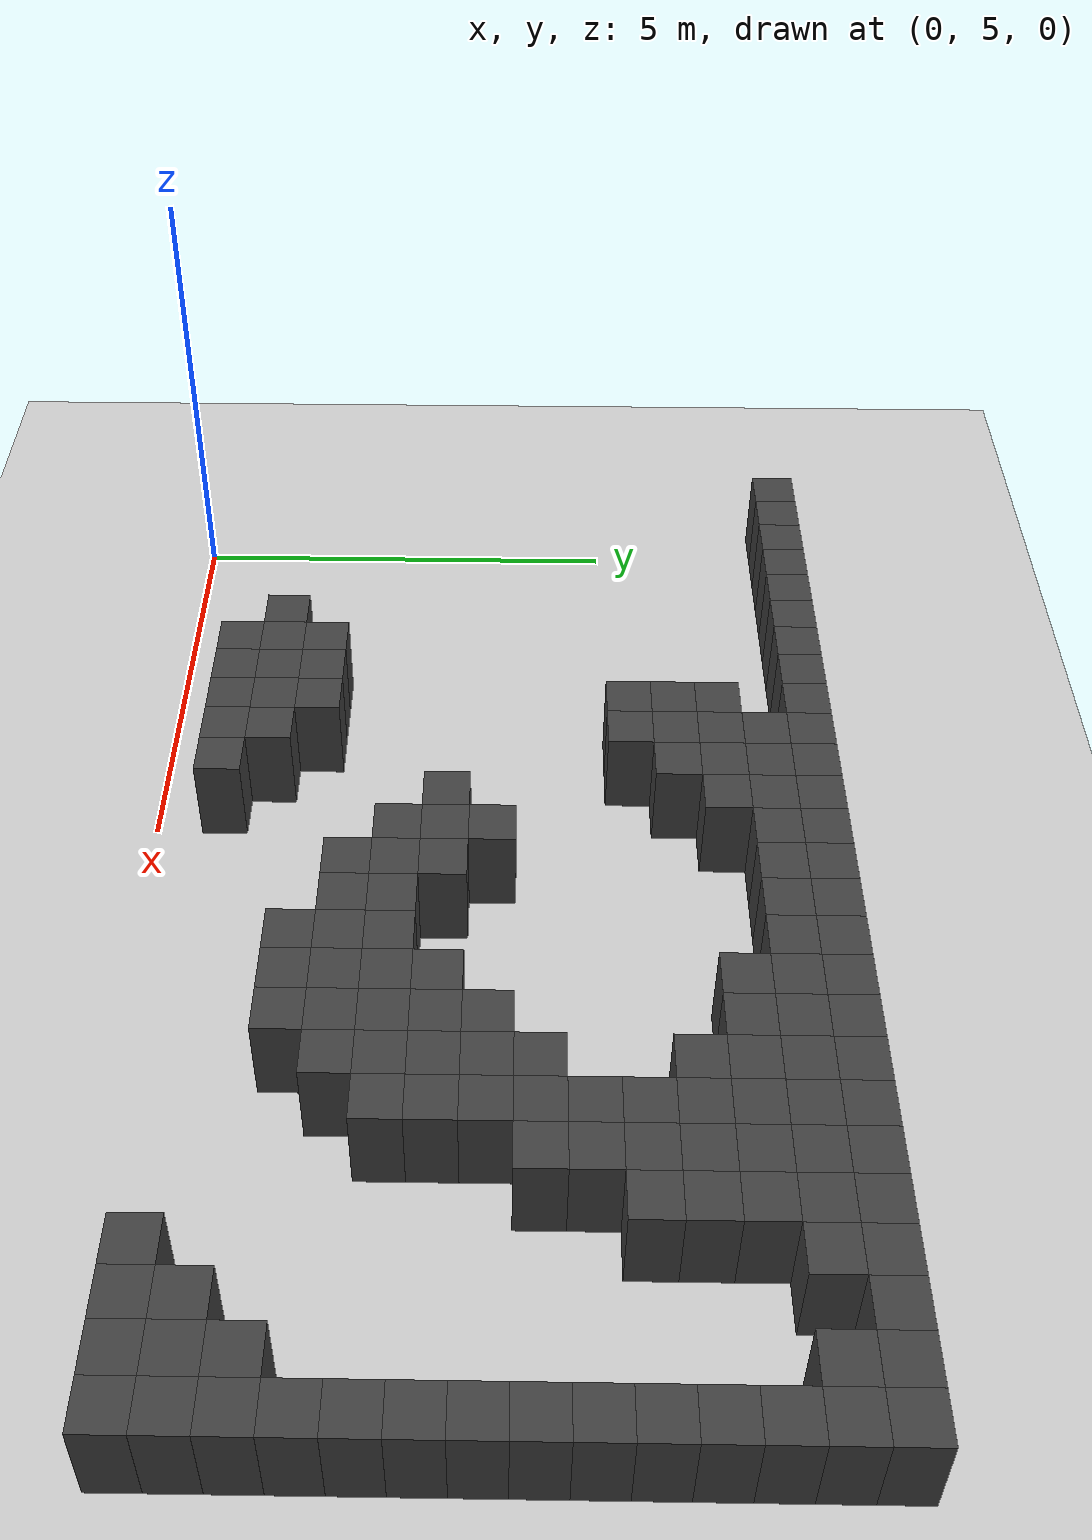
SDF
<sdf version="1.7">
 <world name="map_9544">
  <model name="ground_plane">
   <static>true</static>
   <link name="link">
    <collision name="collision">
     <geometry><plane><normal>0 0 1</normal><size>200 200</size></plane></geometry>
    </collision>
    <visual name="visual">
     <geometry><plane><normal>0 0 1</normal><size>200 200</size></plane></geometry>
     <material><ambient>0.8 0.8 0.8 1</ambient><diffuse>0.8 0.8 0.8 1</diffuse></material>
    </visual>
   </link>
  </model>
  <model name="maze_environment">
   <static>true</static>
   <link name="wall_24">
    <pose>-0.250 12.250 0.500 0 0 0</pose>
    <collision name="col"><geometry><box><size>0.5 0.5 1.0</size></box></geometry></collision>
    <visual name="vis">
     <geometry><box><size>0.5 0.5 1.0</size></box></geometry>
     <material><ambient>0.15 0.15 0.15 1</ambient><diffuse>0.25 0.25 0.25 1</diffuse></material>
    </visual>
   </link>
   <link name="wall_25">
    <pose>0.250 12.250 0.500 0 0 0</pose>
    <collision name="col"><geometry><box><size>0.5 0.5 1.0</size></box></geometry></collision>
    <visual name="vis">
     <geometry><box><size>0.5 0.5 1.0</size></box></geometry>
     <material><ambient>0.15 0.15 0.15 1</ambient><diffuse>0.25 0.25 0.25 1</diffuse></material>
    </visual>
   </link>
   <link name="wall_26">
    <pose>0.750 12.250 0.500 0 0 0</pose>
    <collision name="col"><geometry><box><size>0.5 0.5 1.0</size></box></geometry></collision>
    <visual name="vis">
     <geometry><box><size>0.5 0.5 1.0</size></box></geometry>
     <material><ambient>0.15 0.15 0.15 1</ambient><diffuse>0.25 0.25 0.25 1</diffuse></material>
    </visual>
   </link>
   <link name="wall_27">
    <pose>1.250 12.250 0.500 0 0 0</pose>
    <collision name="col"><geometry><box><size>0.5 0.5 1.0</size></box></geometry></collision>
    <visual name="vis">
     <geometry><box><size>0.5 0.5 1.0</size></box></geometry>
     <material><ambient>0.15 0.15 0.15 1</ambient><diffuse>0.25 0.25 0.25 1</diffuse></material>
    </visual>
   </link>
   <link name="wall_28">
    <pose>1.750 12.250 0.500 0 0 0</pose>
    <collision name="col"><geometry><box><size>0.5 0.5 1.0</size></box></geometry></collision>
    <visual name="vis">
     <geometry><box><size>0.5 0.5 1.0</size></box></geometry>
     <material><ambient>0.15 0.15 0.15 1</ambient><diffuse>0.25 0.25 0.25 1</diffuse></material>
    </visual>
   </link>
   <link name="wall_29">
    <pose>2.250 12.250 0.500 0 0 0</pose>
    <collision name="col"><geometry><box><size>0.5 0.5 1.0</size></box></geometry></collision>
    <visual name="vis">
     <geometry><box><size>0.5 0.5 1.0</size></box></geometry>
     <material><ambient>0.15 0.15 0.15 1</ambient><diffuse>0.25 0.25 0.25 1</diffuse></material>
    </visual>
   </link>
   <link name="wall_30">
    <pose>2.750 12.250 0.500 0 0 0</pose>
    <collision name="col"><geometry><box><size>0.5 0.5 1.0</size></box></geometry></collision>
    <visual name="vis">
     <geometry><box><size>0.5 0.5 1.0</size></box></geometry>
     <material><ambient>0.15 0.15 0.15 1</ambient><diffuse>0.25 0.25 0.25 1</diffuse></material>
    </visual>
   </link>
   <link name="wall_31">
    <pose>3.250 12.250 0.500 0 0 0</pose>
    <collision name="col"><geometry><box><size>0.5 0.5 1.0</size></box></geometry></collision>
    <visual name="vis">
     <geometry><box><size>0.5 0.5 1.0</size></box></geometry>
     <material><ambient>0.15 0.15 0.15 1</ambient><diffuse>0.25 0.25 0.25 1</diffuse></material>
    </visual>
   </link>
   <link name="wall_32">
    <pose>3.750 12.250 0.500 0 0 0</pose>
    <collision name="col"><geometry><box><size>0.5 0.5 1.0</size></box></geometry></collision>
    <visual name="vis">
     <geometry><box><size>0.5 0.5 1.0</size></box></geometry>
     <material><ambient>0.15 0.15 0.15 1</ambient><diffuse>0.25 0.25 0.25 1</diffuse></material>
    </visual>
   </link>
   <link name="wall_33">
    <pose>4.250 12.250 0.500 0 0 0</pose>
    <collision name="col"><geometry><box><size>0.5 0.5 1.0</size></box></geometry></collision>
    <visual name="vis">
     <geometry><box><size>0.5 0.5 1.0</size></box></geometry>
     <material><ambient>0.15 0.15 0.15 1</ambient><diffuse>0.25 0.25 0.25 1</diffuse></material>
    </visual>
   </link>
   <link name="wall_34">
    <pose>4.750 12.250 0.500 0 0 0</pose>
    <collision name="col"><geometry><box><size>0.5 0.5 1.0</size></box></geometry></collision>
    <visual name="vis">
     <geometry><box><size>0.5 0.5 1.0</size></box></geometry>
     <material><ambient>0.15 0.15 0.15 1</ambient><diffuse>0.25 0.25 0.25 1</diffuse></material>
    </visual>
   </link>
   <link name="wall_35">
    <pose>5.250 12.250 0.500 0 0 0</pose>
    <collision name="col"><geometry><box><size>0.5 0.5 1.0</size></box></geometry></collision>
    <visual name="vis">
     <geometry><box><size>0.5 0.5 1.0</size></box></geometry>
     <material><ambient>0.15 0.15 0.15 1</ambient><diffuse>0.25 0.25 0.25 1</diffuse></material>
    </visual>
   </link>
   <link name="wall_36">
    <pose>5.750 12.250 0.500 0 0 0</pose>
    <collision name="col"><geometry><box><size>0.5 0.5 1.0</size></box></geometry></collision>
    <visual name="vis">
     <geometry><box><size>0.5 0.5 1.0</size></box></geometry>
     <material><ambient>0.15 0.15 0.15 1</ambient><diffuse>0.25 0.25 0.25 1</diffuse></material>
    </visual>
   </link>
   <link name="wall_37">
    <pose>6.250 12.250 0.500 0 0 0</pose>
    <collision name="col"><geometry><box><size>0.5 0.5 1.0</size></box></geometry></collision>
    <visual name="vis">
     <geometry><box><size>0.5 0.5 1.0</size></box></geometry>
     <material><ambient>0.15 0.15 0.15 1</ambient><diffuse>0.25 0.25 0.25 1</diffuse></material>
    </visual>
   </link>
   <link name="wall_38">
    <pose>6.750 12.250 0.500 0 0 0</pose>
    <collision name="col"><geometry><box><size>0.5 0.5 1.0</size></box></geometry></collision>
    <visual name="vis">
     <geometry><box><size>0.5 0.5 1.0</size></box></geometry>
     <material><ambient>0.15 0.15 0.15 1</ambient><diffuse>0.25 0.25 0.25 1</diffuse></material>
    </visual>
   </link>
   <link name="wall_39">
    <pose>7.250 12.250 0.500 0 0 0</pose>
    <collision name="col"><geometry><box><size>0.5 0.5 1.0</size></box></geometry></collision>
    <visual name="vis">
     <geometry><box><size>0.5 0.5 1.0</size></box></geometry>
     <material><ambient>0.15 0.15 0.15 1</ambient><diffuse>0.25 0.25 0.25 1</diffuse></material>
    </visual>
   </link>
   <link name="wall_40">
    <pose>7.750 12.250 0.500 0 0 0</pose>
    <collision name="col"><geometry><box><size>0.5 0.5 1.0</size></box></geometry></collision>
    <visual name="vis">
     <geometry><box><size>0.5 0.5 1.0</size></box></geometry>
     <material><ambient>0.15 0.15 0.15 1</ambient><diffuse>0.25 0.25 0.25 1</diffuse></material>
    </visual>
   </link>
   <link name="wall_41">
    <pose>8.250 12.250 0.500 0 0 0</pose>
    <collision name="col"><geometry><box><size>0.5 0.5 1.0</size></box></geometry></collision>
    <visual name="vis">
     <geometry><box><size>0.5 0.5 1.0</size></box></geometry>
     <material><ambient>0.15 0.15 0.15 1</ambient><diffuse>0.25 0.25 0.25 1</diffuse></material>
    </visual>
   </link>
   <link name="wall_42">
    <pose>8.750 12.250 0.500 0 0 0</pose>
    <collision name="col"><geometry><box><size>0.5 0.5 1.0</size></box></geometry></collision>
    <visual name="vis">
     <geometry><box><size>0.5 0.5 1.0</size></box></geometry>
     <material><ambient>0.15 0.15 0.15 1</ambient><diffuse>0.25 0.25 0.25 1</diffuse></material>
    </visual>
   </link>
   <link name="wall_43">
    <pose>9.250 12.250 0.500 0 0 0</pose>
    <collision name="col"><geometry><box><size>0.5 0.5 1.0</size></box></geometry></collision>
    <visual name="vis">
     <geometry><box><size>0.5 0.5 1.0</size></box></geometry>
     <material><ambient>0.15 0.15 0.15 1</ambient><diffuse>0.25 0.25 0.25 1</diffuse></material>
    </visual>
   </link>
   <link name="wall_44">
    <pose>9.750 12.250 0.500 0 0 0</pose>
    <collision name="col"><geometry><box><size>0.5 0.5 1.0</size></box></geometry></collision>
    <visual name="vis">
     <geometry><box><size>0.5 0.5 1.0</size></box></geometry>
     <material><ambient>0.15 0.15 0.15 1</ambient><diffuse>0.25 0.25 0.25 1</diffuse></material>
    </visual>
   </link>
   <link name="wall_45">
    <pose>10.250 12.250 0.500 0 0 0</pose>
    <collision name="col"><geometry><box><size>0.5 0.5 1.0</size></box></geometry></collision>
    <visual name="vis">
     <geometry><box><size>0.5 0.5 1.0</size></box></geometry>
     <material><ambient>0.15 0.15 0.15 1</ambient><diffuse>0.25 0.25 0.25 1</diffuse></material>
    </visual>
   </link>
   <link name="wall_46">
    <pose>10.750 12.250 0.500 0 0 0</pose>
    <collision name="col"><geometry><box><size>0.5 0.5 1.0</size></box></geometry></collision>
    <visual name="vis">
     <geometry><box><size>0.5 0.5 1.0</size></box></geometry>
     <material><ambient>0.15 0.15 0.15 1</ambient><diffuse>0.25 0.25 0.25 1</diffuse></material>
    </visual>
   </link>
   <link name="wall_47">
    <pose>11.250 12.250 0.500 0 0 0</pose>
    <collision name="col"><geometry><box><size>0.5 0.5 1.0</size></box></geometry></collision>
    <visual name="vis">
     <geometry><box><size>0.5 0.5 1.0</size></box></geometry>
     <material><ambient>0.15 0.15 0.15 1</ambient><diffuse>0.25 0.25 0.25 1</diffuse></material>
    </visual>
   </link>
   <link name="wall_48">
    <pose>11.750 12.250 0.500 0 0 0</pose>
    <collision name="col"><geometry><box><size>0.5 0.5 1.0</size></box></geometry></collision>
    <visual name="vis">
     <geometry><box><size>0.5 0.5 1.0</size></box></geometry>
     <material><ambient>0.15 0.15 0.15 1</ambient><diffuse>0.25 0.25 0.25 1</diffuse></material>
    </visual>
   </link>
   <link name="wall_49">
    <pose>12.250 12.250 0.500 0 0 0</pose>
    <collision name="col"><geometry><box><size>0.5 0.5 1.0</size></box></geometry></collision>
    <visual name="vis">
     <geometry><box><size>0.5 0.5 1.0</size></box></geometry>
     <material><ambient>0.15 0.15 0.15 1</ambient><diffuse>0.25 0.25 0.25 1</diffuse></material>
    </visual>
   </link>
   <link name="wall_59">
    <pose>4.250 11.750 0.500 0 0 0</pose>
    <collision name="col"><geometry><box><size>0.5 0.5 1.0</size></box></geometry></collision>
    <visual name="vis">
     <geometry><box><size>0.5 0.5 1.0</size></box></geometry>
     <material><ambient>0.15 0.15 0.15 1</ambient><diffuse>0.25 0.25 0.25 1</diffuse></material>
    </visual>
   </link>
   <link name="wall_60">
    <pose>4.750 11.750 0.500 0 0 0</pose>
    <collision name="col"><geometry><box><size>0.5 0.5 1.0</size></box></geometry></collision>
    <visual name="vis">
     <geometry><box><size>0.5 0.5 1.0</size></box></geometry>
     <material><ambient>0.15 0.15 0.15 1</ambient><diffuse>0.25 0.25 0.25 1</diffuse></material>
    </visual>
   </link>
   <link name="wall_61">
    <pose>5.250 11.750 0.500 0 0 0</pose>
    <collision name="col"><geometry><box><size>0.5 0.5 1.0</size></box></geometry></collision>
    <visual name="vis">
     <geometry><box><size>0.5 0.5 1.0</size></box></geometry>
     <material><ambient>0.15 0.15 0.15 1</ambient><diffuse>0.25 0.25 0.25 1</diffuse></material>
    </visual>
   </link>
   <link name="wall_62">
    <pose>5.750 11.750 0.500 0 0 0</pose>
    <collision name="col"><geometry><box><size>0.5 0.5 1.0</size></box></geometry></collision>
    <visual name="vis">
     <geometry><box><size>0.5 0.5 1.0</size></box></geometry>
     <material><ambient>0.15 0.15 0.15 1</ambient><diffuse>0.25 0.25 0.25 1</diffuse></material>
    </visual>
   </link>
   <link name="wall_63">
    <pose>6.250 11.750 0.500 0 0 0</pose>
    <collision name="col"><geometry><box><size>0.5 0.5 1.0</size></box></geometry></collision>
    <visual name="vis">
     <geometry><box><size>0.5 0.5 1.0</size></box></geometry>
     <material><ambient>0.15 0.15 0.15 1</ambient><diffuse>0.25 0.25 0.25 1</diffuse></material>
    </visual>
   </link>
   <link name="wall_64">
    <pose>6.750 11.750 0.500 0 0 0</pose>
    <collision name="col"><geometry><box><size>0.5 0.5 1.0</size></box></geometry></collision>
    <visual name="vis">
     <geometry><box><size>0.5 0.5 1.0</size></box></geometry>
     <material><ambient>0.15 0.15 0.15 1</ambient><diffuse>0.25 0.25 0.25 1</diffuse></material>
    </visual>
   </link>
   <link name="wall_65">
    <pose>7.250 11.750 0.500 0 0 0</pose>
    <collision name="col"><geometry><box><size>0.5 0.5 1.0</size></box></geometry></collision>
    <visual name="vis">
     <geometry><box><size>0.5 0.5 1.0</size></box></geometry>
     <material><ambient>0.15 0.15 0.15 1</ambient><diffuse>0.25 0.25 0.25 1</diffuse></material>
    </visual>
   </link>
   <link name="wall_66">
    <pose>7.750 11.750 0.500 0 0 0</pose>
    <collision name="col"><geometry><box><size>0.5 0.5 1.0</size></box></geometry></collision>
    <visual name="vis">
     <geometry><box><size>0.5 0.5 1.0</size></box></geometry>
     <material><ambient>0.15 0.15 0.15 1</ambient><diffuse>0.25 0.25 0.25 1</diffuse></material>
    </visual>
   </link>
   <link name="wall_67">
    <pose>8.250 11.750 0.500 0 0 0</pose>
    <collision name="col"><geometry><box><size>0.5 0.5 1.0</size></box></geometry></collision>
    <visual name="vis">
     <geometry><box><size>0.5 0.5 1.0</size></box></geometry>
     <material><ambient>0.15 0.15 0.15 1</ambient><diffuse>0.25 0.25 0.25 1</diffuse></material>
    </visual>
   </link>
   <link name="wall_68">
    <pose>8.750 11.750 0.500 0 0 0</pose>
    <collision name="col"><geometry><box><size>0.5 0.5 1.0</size></box></geometry></collision>
    <visual name="vis">
     <geometry><box><size>0.5 0.5 1.0</size></box></geometry>
     <material><ambient>0.15 0.15 0.15 1</ambient><diffuse>0.25 0.25 0.25 1</diffuse></material>
    </visual>
   </link>
   <link name="wall_69">
    <pose>9.250 11.750 0.500 0 0 0</pose>
    <collision name="col"><geometry><box><size>0.5 0.5 1.0</size></box></geometry></collision>
    <visual name="vis">
     <geometry><box><size>0.5 0.5 1.0</size></box></geometry>
     <material><ambient>0.15 0.15 0.15 1</ambient><diffuse>0.25 0.25 0.25 1</diffuse></material>
    </visual>
   </link>
   <link name="wall_70">
    <pose>9.750 11.750 0.500 0 0 0</pose>
    <collision name="col"><geometry><box><size>0.5 0.5 1.0</size></box></geometry></collision>
    <visual name="vis">
     <geometry><box><size>0.5 0.5 1.0</size></box></geometry>
     <material><ambient>0.15 0.15 0.15 1</ambient><diffuse>0.25 0.25 0.25 1</diffuse></material>
    </visual>
   </link>
   <link name="wall_71">
    <pose>10.250 11.750 0.500 0 0 0</pose>
    <collision name="col"><geometry><box><size>0.5 0.5 1.0</size></box></geometry></collision>
    <visual name="vis">
     <geometry><box><size>0.5 0.5 1.0</size></box></geometry>
     <material><ambient>0.15 0.15 0.15 1</ambient><diffuse>0.25 0.25 0.25 1</diffuse></material>
    </visual>
   </link>
   <link name="wall_72">
    <pose>10.750 11.750 0.500 0 0 0</pose>
    <collision name="col"><geometry><box><size>0.5 0.5 1.0</size></box></geometry></collision>
    <visual name="vis">
     <geometry><box><size>0.5 0.5 1.0</size></box></geometry>
     <material><ambient>0.15 0.15 0.15 1</ambient><diffuse>0.25 0.25 0.25 1</diffuse></material>
    </visual>
   </link>
   <link name="wall_73">
    <pose>11.750 11.750 0.500 0 0 0</pose>
    <collision name="col"><geometry><box><size>0.5 0.5 1.0</size></box></geometry></collision>
    <visual name="vis">
     <geometry><box><size>0.5 0.5 1.0</size></box></geometry>
     <material><ambient>0.15 0.15 0.15 1</ambient><diffuse>0.25 0.25 0.25 1</diffuse></material>
    </visual>
   </link>
   <link name="wall_74">
    <pose>12.250 11.750 0.500 0 0 0</pose>
    <collision name="col"><geometry><box><size>0.5 0.5 1.0</size></box></geometry></collision>
    <visual name="vis">
     <geometry><box><size>0.5 0.5 1.0</size></box></geometry>
     <material><ambient>0.15 0.15 0.15 1</ambient><diffuse>0.25 0.25 0.25 1</diffuse></material>
    </visual>
   </link>
   <link name="wall_80">
    <pose>3.750 11.250 0.500 0 0 0</pose>
    <collision name="col"><geometry><box><size>0.5 0.5 1.0</size></box></geometry></collision>
    <visual name="vis">
     <geometry><box><size>0.5 0.5 1.0</size></box></geometry>
     <material><ambient>0.15 0.15 0.15 1</ambient><diffuse>0.25 0.25 0.25 1</diffuse></material>
    </visual>
   </link>
   <link name="wall_81">
    <pose>4.250 11.250 0.500 0 0 0</pose>
    <collision name="col"><geometry><box><size>0.5 0.5 1.0</size></box></geometry></collision>
    <visual name="vis">
     <geometry><box><size>0.5 0.5 1.0</size></box></geometry>
     <material><ambient>0.15 0.15 0.15 1</ambient><diffuse>0.25 0.25 0.25 1</diffuse></material>
    </visual>
   </link>
   <link name="wall_82">
    <pose>4.750 11.250 0.500 0 0 0</pose>
    <collision name="col"><geometry><box><size>0.5 0.5 1.0</size></box></geometry></collision>
    <visual name="vis">
     <geometry><box><size>0.5 0.5 1.0</size></box></geometry>
     <material><ambient>0.15 0.15 0.15 1</ambient><diffuse>0.25 0.25 0.25 1</diffuse></material>
    </visual>
   </link>
   <link name="wall_83">
    <pose>5.250 11.250 0.500 0 0 0</pose>
    <collision name="col"><geometry><box><size>0.5 0.5 1.0</size></box></geometry></collision>
    <visual name="vis">
     <geometry><box><size>0.5 0.5 1.0</size></box></geometry>
     <material><ambient>0.15 0.15 0.15 1</ambient><diffuse>0.25 0.25 0.25 1</diffuse></material>
    </visual>
   </link>
   <link name="wall_84">
    <pose>7.750 11.250 0.500 0 0 0</pose>
    <collision name="col"><geometry><box><size>0.5 0.5 1.0</size></box></geometry></collision>
    <visual name="vis">
     <geometry><box><size>0.5 0.5 1.0</size></box></geometry>
     <material><ambient>0.15 0.15 0.15 1</ambient><diffuse>0.25 0.25 0.25 1</diffuse></material>
    </visual>
   </link>
   <link name="wall_85">
    <pose>8.250 11.250 0.500 0 0 0</pose>
    <collision name="col"><geometry><box><size>0.5 0.5 1.0</size></box></geometry></collision>
    <visual name="vis">
     <geometry><box><size>0.5 0.5 1.0</size></box></geometry>
     <material><ambient>0.15 0.15 0.15 1</ambient><diffuse>0.25 0.25 0.25 1</diffuse></material>
    </visual>
   </link>
   <link name="wall_86">
    <pose>8.750 11.250 0.500 0 0 0</pose>
    <collision name="col"><geometry><box><size>0.5 0.5 1.0</size></box></geometry></collision>
    <visual name="vis">
     <geometry><box><size>0.5 0.5 1.0</size></box></geometry>
     <material><ambient>0.15 0.15 0.15 1</ambient><diffuse>0.25 0.25 0.25 1</diffuse></material>
    </visual>
   </link>
   <link name="wall_87">
    <pose>9.250 11.250 0.500 0 0 0</pose>
    <collision name="col"><geometry><box><size>0.5 0.5 1.0</size></box></geometry></collision>
    <visual name="vis">
     <geometry><box><size>0.5 0.5 1.0</size></box></geometry>
     <material><ambient>0.15 0.15 0.15 1</ambient><diffuse>0.25 0.25 0.25 1</diffuse></material>
    </visual>
   </link>
   <link name="wall_88">
    <pose>9.750 11.250 0.500 0 0 0</pose>
    <collision name="col"><geometry><box><size>0.5 0.5 1.0</size></box></geometry></collision>
    <visual name="vis">
     <geometry><box><size>0.5 0.5 1.0</size></box></geometry>
     <material><ambient>0.15 0.15 0.15 1</ambient><diffuse>0.25 0.25 0.25 1</diffuse></material>
    </visual>
   </link>
   <link name="wall_89">
    <pose>10.250 11.250 0.500 0 0 0</pose>
    <collision name="col"><geometry><box><size>0.5 0.5 1.0</size></box></geometry></collision>
    <visual name="vis">
     <geometry><box><size>0.5 0.5 1.0</size></box></geometry>
     <material><ambient>0.15 0.15 0.15 1</ambient><diffuse>0.25 0.25 0.25 1</diffuse></material>
    </visual>
   </link>
   <link name="wall_90">
    <pose>12.250 11.250 0.500 0 0 0</pose>
    <collision name="col"><geometry><box><size>0.5 0.5 1.0</size></box></geometry></collision>
    <visual name="vis">
     <geometry><box><size>0.5 0.5 1.0</size></box></geometry>
     <material><ambient>0.15 0.15 0.15 1</ambient><diffuse>0.25 0.25 0.25 1</diffuse></material>
    </visual>
   </link>
   <link name="wall_97">
    <pose>3.750 10.750 0.500 0 0 0</pose>
    <collision name="col"><geometry><box><size>0.5 0.5 1.0</size></box></geometry></collision>
    <visual name="vis">
     <geometry><box><size>0.5 0.5 1.0</size></box></geometry>
     <material><ambient>0.15 0.15 0.15 1</ambient><diffuse>0.25 0.25 0.25 1</diffuse></material>
    </visual>
   </link>
   <link name="wall_98">
    <pose>4.250 10.750 0.500 0 0 0</pose>
    <collision name="col"><geometry><box><size>0.5 0.5 1.0</size></box></geometry></collision>
    <visual name="vis">
     <geometry><box><size>0.5 0.5 1.0</size></box></geometry>
     <material><ambient>0.15 0.15 0.15 1</ambient><diffuse>0.25 0.25 0.25 1</diffuse></material>
    </visual>
   </link>
   <link name="wall_99">
    <pose>4.750 10.750 0.500 0 0 0</pose>
    <collision name="col"><geometry><box><size>0.5 0.5 1.0</size></box></geometry></collision>
    <visual name="vis">
     <geometry><box><size>0.5 0.5 1.0</size></box></geometry>
     <material><ambient>0.15 0.15 0.15 1</ambient><diffuse>0.25 0.25 0.25 1</diffuse></material>
    </visual>
   </link>
   <link name="wall_100">
    <pose>8.750 10.750 0.500 0 0 0</pose>
    <collision name="col"><geometry><box><size>0.5 0.5 1.0</size></box></geometry></collision>
    <visual name="vis">
     <geometry><box><size>0.5 0.5 1.0</size></box></geometry>
     <material><ambient>0.15 0.15 0.15 1</ambient><diffuse>0.25 0.25 0.25 1</diffuse></material>
    </visual>
   </link>
   <link name="wall_101">
    <pose>9.250 10.750 0.500 0 0 0</pose>
    <collision name="col"><geometry><box><size>0.5 0.5 1.0</size></box></geometry></collision>
    <visual name="vis">
     <geometry><box><size>0.5 0.5 1.0</size></box></geometry>
     <material><ambient>0.15 0.15 0.15 1</ambient><diffuse>0.25 0.25 0.25 1</diffuse></material>
    </visual>
   </link>
   <link name="wall_102">
    <pose>9.750 10.750 0.500 0 0 0</pose>
    <collision name="col"><geometry><box><size>0.5 0.5 1.0</size></box></geometry></collision>
    <visual name="vis">
     <geometry><box><size>0.5 0.5 1.0</size></box></geometry>
     <material><ambient>0.15 0.15 0.15 1</ambient><diffuse>0.25 0.25 0.25 1</diffuse></material>
    </visual>
   </link>
   <link name="wall_103">
    <pose>10.250 10.750 0.500 0 0 0</pose>
    <collision name="col"><geometry><box><size>0.5 0.5 1.0</size></box></geometry></collision>
    <visual name="vis">
     <geometry><box><size>0.5 0.5 1.0</size></box></geometry>
     <material><ambient>0.15 0.15 0.15 1</ambient><diffuse>0.25 0.25 0.25 1</diffuse></material>
    </visual>
   </link>
   <link name="wall_104">
    <pose>12.250 10.750 0.500 0 0 0</pose>
    <collision name="col"><geometry><box><size>0.5 0.5 1.0</size></box></geometry></collision>
    <visual name="vis">
     <geometry><box><size>0.5 0.5 1.0</size></box></geometry>
     <material><ambient>0.15 0.15 0.15 1</ambient><diffuse>0.25 0.25 0.25 1</diffuse></material>
    </visual>
   </link>
   <link name="wall_111">
    <pose>3.750 10.250 0.500 0 0 0</pose>
    <collision name="col"><geometry><box><size>0.5 0.5 1.0</size></box></geometry></collision>
    <visual name="vis">
     <geometry><box><size>0.5 0.5 1.0</size></box></geometry>
     <material><ambient>0.15 0.15 0.15 1</ambient><diffuse>0.25 0.25 0.25 1</diffuse></material>
    </visual>
   </link>
   <link name="wall_112">
    <pose>4.250 10.250 0.500 0 0 0</pose>
    <collision name="col"><geometry><box><size>0.5 0.5 1.0</size></box></geometry></collision>
    <visual name="vis">
     <geometry><box><size>0.5 0.5 1.0</size></box></geometry>
     <material><ambient>0.15 0.15 0.15 1</ambient><diffuse>0.25 0.25 0.25 1</diffuse></material>
    </visual>
   </link>
   <link name="wall_113">
    <pose>9.250 10.250 0.500 0 0 0</pose>
    <collision name="col"><geometry><box><size>0.5 0.5 1.0</size></box></geometry></collision>
    <visual name="vis">
     <geometry><box><size>0.5 0.5 1.0</size></box></geometry>
     <material><ambient>0.15 0.15 0.15 1</ambient><diffuse>0.25 0.25 0.25 1</diffuse></material>
    </visual>
   </link>
   <link name="wall_114">
    <pose>9.750 10.250 0.500 0 0 0</pose>
    <collision name="col"><geometry><box><size>0.5 0.5 1.0</size></box></geometry></collision>
    <visual name="vis">
     <geometry><box><size>0.5 0.5 1.0</size></box></geometry>
     <material><ambient>0.15 0.15 0.15 1</ambient><diffuse>0.25 0.25 0.25 1</diffuse></material>
    </visual>
   </link>
   <link name="wall_115">
    <pose>10.250 10.250 0.500 0 0 0</pose>
    <collision name="col"><geometry><box><size>0.5 0.5 1.0</size></box></geometry></collision>
    <visual name="vis">
     <geometry><box><size>0.5 0.5 1.0</size></box></geometry>
     <material><ambient>0.15 0.15 0.15 1</ambient><diffuse>0.25 0.25 0.25 1</diffuse></material>
    </visual>
   </link>
   <link name="wall_116">
    <pose>12.250 10.250 0.500 0 0 0</pose>
    <collision name="col"><geometry><box><size>0.5 0.5 1.0</size></box></geometry></collision>
    <visual name="vis">
     <geometry><box><size>0.5 0.5 1.0</size></box></geometry>
     <material><ambient>0.15 0.15 0.15 1</ambient><diffuse>0.25 0.25 0.25 1</diffuse></material>
    </visual>
   </link>
   <link name="wall_123">
    <pose>9.250 9.750 0.500 0 0 0</pose>
    <collision name="col"><geometry><box><size>0.5 0.5 1.0</size></box></geometry></collision>
    <visual name="vis">
     <geometry><box><size>0.5 0.5 1.0</size></box></geometry>
     <material><ambient>0.15 0.15 0.15 1</ambient><diffuse>0.25 0.25 0.25 1</diffuse></material>
    </visual>
   </link>
   <link name="wall_124">
    <pose>9.750 9.750 0.500 0 0 0</pose>
    <collision name="col"><geometry><box><size>0.5 0.5 1.0</size></box></geometry></collision>
    <visual name="vis">
     <geometry><box><size>0.5 0.5 1.0</size></box></geometry>
     <material><ambient>0.15 0.15 0.15 1</ambient><diffuse>0.25 0.25 0.25 1</diffuse></material>
    </visual>
   </link>
   <link name="wall_125">
    <pose>12.250 9.750 0.500 0 0 0</pose>
    <collision name="col"><geometry><box><size>0.5 0.5 1.0</size></box></geometry></collision>
    <visual name="vis">
     <geometry><box><size>0.5 0.5 1.0</size></box></geometry>
     <material><ambient>0.15 0.15 0.15 1</ambient><diffuse>0.25 0.25 0.25 1</diffuse></material>
    </visual>
   </link>
   <link name="wall_131">
    <pose>8.750 9.250 0.500 0 0 0</pose>
    <collision name="col"><geometry><box><size>0.5 0.5 1.0</size></box></geometry></collision>
    <visual name="vis">
     <geometry><box><size>0.5 0.5 1.0</size></box></geometry>
     <material><ambient>0.15 0.15 0.15 1</ambient><diffuse>0.25 0.25 0.25 1</diffuse></material>
    </visual>
   </link>
   <link name="wall_132">
    <pose>9.250 9.250 0.500 0 0 0</pose>
    <collision name="col"><geometry><box><size>0.5 0.5 1.0</size></box></geometry></collision>
    <visual name="vis">
     <geometry><box><size>0.5 0.5 1.0</size></box></geometry>
     <material><ambient>0.15 0.15 0.15 1</ambient><diffuse>0.25 0.25 0.25 1</diffuse></material>
    </visual>
   </link>
   <link name="wall_133">
    <pose>9.750 9.250 0.500 0 0 0</pose>
    <collision name="col"><geometry><box><size>0.5 0.5 1.0</size></box></geometry></collision>
    <visual name="vis">
     <geometry><box><size>0.5 0.5 1.0</size></box></geometry>
     <material><ambient>0.15 0.15 0.15 1</ambient><diffuse>0.25 0.25 0.25 1</diffuse></material>
    </visual>
   </link>
   <link name="wall_134">
    <pose>12.250 9.250 0.500 0 0 0</pose>
    <collision name="col"><geometry><box><size>0.5 0.5 1.0</size></box></geometry></collision>
    <visual name="vis">
     <geometry><box><size>0.5 0.5 1.0</size></box></geometry>
     <material><ambient>0.15 0.15 0.15 1</ambient><diffuse>0.25 0.25 0.25 1</diffuse></material>
    </visual>
   </link>
   <link name="wall_139">
    <pose>5.750 8.750 0.500 0 0 0</pose>
    <collision name="col"><geometry><box><size>0.5 0.5 1.0</size></box></geometry></collision>
    <visual name="vis">
     <geometry><box><size>0.5 0.5 1.0</size></box></geometry>
     <material><ambient>0.15 0.15 0.15 1</ambient><diffuse>0.25 0.25 0.25 1</diffuse></material>
    </visual>
   </link>
   <link name="wall_140">
    <pose>8.250 8.750 0.500 0 0 0</pose>
    <collision name="col"><geometry><box><size>0.5 0.5 1.0</size></box></geometry></collision>
    <visual name="vis">
     <geometry><box><size>0.5 0.5 1.0</size></box></geometry>
     <material><ambient>0.15 0.15 0.15 1</ambient><diffuse>0.25 0.25 0.25 1</diffuse></material>
    </visual>
   </link>
   <link name="wall_141">
    <pose>8.750 8.750 0.500 0 0 0</pose>
    <collision name="col"><geometry><box><size>0.5 0.5 1.0</size></box></geometry></collision>
    <visual name="vis">
     <geometry><box><size>0.5 0.5 1.0</size></box></geometry>
     <material><ambient>0.15 0.15 0.15 1</ambient><diffuse>0.25 0.25 0.25 1</diffuse></material>
    </visual>
   </link>
   <link name="wall_142">
    <pose>9.250 8.750 0.500 0 0 0</pose>
    <collision name="col"><geometry><box><size>0.5 0.5 1.0</size></box></geometry></collision>
    <visual name="vis">
     <geometry><box><size>0.5 0.5 1.0</size></box></geometry>
     <material><ambient>0.15 0.15 0.15 1</ambient><diffuse>0.25 0.25 0.25 1</diffuse></material>
    </visual>
   </link>
   <link name="wall_143">
    <pose>12.250 8.750 0.500 0 0 0</pose>
    <collision name="col"><geometry><box><size>0.5 0.5 1.0</size></box></geometry></collision>
    <visual name="vis">
     <geometry><box><size>0.5 0.5 1.0</size></box></geometry>
     <material><ambient>0.15 0.15 0.15 1</ambient><diffuse>0.25 0.25 0.25 1</diffuse></material>
    </visual>
   </link>
   <link name="wall_146">
    <pose>5.250 8.250 0.500 0 0 0</pose>
    <collision name="col"><geometry><box><size>0.5 0.5 1.0</size></box></geometry></collision>
    <visual name="vis">
     <geometry><box><size>0.5 0.5 1.0</size></box></geometry>
     <material><ambient>0.15 0.15 0.15 1</ambient><diffuse>0.25 0.25 0.25 1</diffuse></material>
    </visual>
   </link>
   <link name="wall_147">
    <pose>5.750 8.250 0.500 0 0 0</pose>
    <collision name="col"><geometry><box><size>0.5 0.5 1.0</size></box></geometry></collision>
    <visual name="vis">
     <geometry><box><size>0.5 0.5 1.0</size></box></geometry>
     <material><ambient>0.15 0.15 0.15 1</ambient><diffuse>0.25 0.25 0.25 1</diffuse></material>
    </visual>
   </link>
   <link name="wall_148">
    <pose>6.250 8.250 0.500 0 0 0</pose>
    <collision name="col"><geometry><box><size>0.5 0.5 1.0</size></box></geometry></collision>
    <visual name="vis">
     <geometry><box><size>0.5 0.5 1.0</size></box></geometry>
     <material><ambient>0.15 0.15 0.15 1</ambient><diffuse>0.25 0.25 0.25 1</diffuse></material>
    </visual>
   </link>
   <link name="wall_149">
    <pose>7.750 8.250 0.500 0 0 0</pose>
    <collision name="col"><geometry><box><size>0.5 0.5 1.0</size></box></geometry></collision>
    <visual name="vis">
     <geometry><box><size>0.5 0.5 1.0</size></box></geometry>
     <material><ambient>0.15 0.15 0.15 1</ambient><diffuse>0.25 0.25 0.25 1</diffuse></material>
    </visual>
   </link>
   <link name="wall_150">
    <pose>8.250 8.250 0.500 0 0 0</pose>
    <collision name="col"><geometry><box><size>0.5 0.5 1.0</size></box></geometry></collision>
    <visual name="vis">
     <geometry><box><size>0.5 0.5 1.0</size></box></geometry>
     <material><ambient>0.15 0.15 0.15 1</ambient><diffuse>0.25 0.25 0.25 1</diffuse></material>
    </visual>
   </link>
   <link name="wall_151">
    <pose>8.750 8.250 0.500 0 0 0</pose>
    <collision name="col"><geometry><box><size>0.5 0.5 1.0</size></box></geometry></collision>
    <visual name="vis">
     <geometry><box><size>0.5 0.5 1.0</size></box></geometry>
     <material><ambient>0.15 0.15 0.15 1</ambient><diffuse>0.25 0.25 0.25 1</diffuse></material>
    </visual>
   </link>
   <link name="wall_152">
    <pose>9.250 8.250 0.500 0 0 0</pose>
    <collision name="col"><geometry><box><size>0.5 0.5 1.0</size></box></geometry></collision>
    <visual name="vis">
     <geometry><box><size>0.5 0.5 1.0</size></box></geometry>
     <material><ambient>0.15 0.15 0.15 1</ambient><diffuse>0.25 0.25 0.25 1</diffuse></material>
    </visual>
   </link>
   <link name="wall_153">
    <pose>12.250 8.250 0.500 0 0 0</pose>
    <collision name="col"><geometry><box><size>0.5 0.5 1.0</size></box></geometry></collision>
    <visual name="vis">
     <geometry><box><size>0.5 0.5 1.0</size></box></geometry>
     <material><ambient>0.15 0.15 0.15 1</ambient><diffuse>0.25 0.25 0.25 1</diffuse></material>
    </visual>
   </link>
   <link name="wall_156">
    <pose>5.750 7.750 0.500 0 0 0</pose>
    <collision name="col"><geometry><box><size>0.5 0.5 1.0</size></box></geometry></collision>
    <visual name="vis">
     <geometry><box><size>0.5 0.5 1.0</size></box></geometry>
     <material><ambient>0.15 0.15 0.15 1</ambient><diffuse>0.25 0.25 0.25 1</diffuse></material>
    </visual>
   </link>
   <link name="wall_157">
    <pose>6.250 7.750 0.500 0 0 0</pose>
    <collision name="col"><geometry><box><size>0.5 0.5 1.0</size></box></geometry></collision>
    <visual name="vis">
     <geometry><box><size>0.5 0.5 1.0</size></box></geometry>
     <material><ambient>0.15 0.15 0.15 1</ambient><diffuse>0.25 0.25 0.25 1</diffuse></material>
    </visual>
   </link>
   <link name="wall_158">
    <pose>6.750 7.750 0.500 0 0 0</pose>
    <collision name="col"><geometry><box><size>0.5 0.5 1.0</size></box></geometry></collision>
    <visual name="vis">
     <geometry><box><size>0.5 0.5 1.0</size></box></geometry>
     <material><ambient>0.15 0.15 0.15 1</ambient><diffuse>0.25 0.25 0.25 1</diffuse></material>
    </visual>
   </link>
   <link name="wall_159">
    <pose>7.250 7.750 0.500 0 0 0</pose>
    <collision name="col"><geometry><box><size>0.5 0.5 1.0</size></box></geometry></collision>
    <visual name="vis">
     <geometry><box><size>0.5 0.5 1.0</size></box></geometry>
     <material><ambient>0.15 0.15 0.15 1</ambient><diffuse>0.25 0.25 0.25 1</diffuse></material>
    </visual>
   </link>
   <link name="wall_160">
    <pose>7.750 7.750 0.500 0 0 0</pose>
    <collision name="col"><geometry><box><size>0.5 0.5 1.0</size></box></geometry></collision>
    <visual name="vis">
     <geometry><box><size>0.5 0.5 1.0</size></box></geometry>
     <material><ambient>0.15 0.15 0.15 1</ambient><diffuse>0.25 0.25 0.25 1</diffuse></material>
    </visual>
   </link>
   <link name="wall_161">
    <pose>8.250 7.750 0.500 0 0 0</pose>
    <collision name="col"><geometry><box><size>0.5 0.5 1.0</size></box></geometry></collision>
    <visual name="vis">
     <geometry><box><size>0.5 0.5 1.0</size></box></geometry>
     <material><ambient>0.15 0.15 0.15 1</ambient><diffuse>0.25 0.25 0.25 1</diffuse></material>
    </visual>
   </link>
   <link name="wall_162">
    <pose>8.750 7.750 0.500 0 0 0</pose>
    <collision name="col"><geometry><box><size>0.5 0.5 1.0</size></box></geometry></collision>
    <visual name="vis">
     <geometry><box><size>0.5 0.5 1.0</size></box></geometry>
     <material><ambient>0.15 0.15 0.15 1</ambient><diffuse>0.25 0.25 0.25 1</diffuse></material>
    </visual>
   </link>
   <link name="wall_163">
    <pose>9.250 7.750 0.500 0 0 0</pose>
    <collision name="col"><geometry><box><size>0.5 0.5 1.0</size></box></geometry></collision>
    <visual name="vis">
     <geometry><box><size>0.5 0.5 1.0</size></box></geometry>
     <material><ambient>0.15 0.15 0.15 1</ambient><diffuse>0.25 0.25 0.25 1</diffuse></material>
    </visual>
   </link>
   <link name="wall_164">
    <pose>12.250 7.750 0.500 0 0 0</pose>
    <collision name="col"><geometry><box><size>0.5 0.5 1.0</size></box></geometry></collision>
    <visual name="vis">
     <geometry><box><size>0.5 0.5 1.0</size></box></geometry>
     <material><ambient>0.15 0.15 0.15 1</ambient><diffuse>0.25 0.25 0.25 1</diffuse></material>
    </visual>
   </link>
   <link name="wall_169">
    <pose>6.250 7.250 0.500 0 0 0</pose>
    <collision name="col"><geometry><box><size>0.5 0.5 1.0</size></box></geometry></collision>
    <visual name="vis">
     <geometry><box><size>0.5 0.5 1.0</size></box></geometry>
     <material><ambient>0.15 0.15 0.15 1</ambient><diffuse>0.25 0.25 0.25 1</diffuse></material>
    </visual>
   </link>
   <link name="wall_170">
    <pose>6.750 7.250 0.500 0 0 0</pose>
    <collision name="col"><geometry><box><size>0.5 0.5 1.0</size></box></geometry></collision>
    <visual name="vis">
     <geometry><box><size>0.5 0.5 1.0</size></box></geometry>
     <material><ambient>0.15 0.15 0.15 1</ambient><diffuse>0.25 0.25 0.25 1</diffuse></material>
    </visual>
   </link>
   <link name="wall_171">
    <pose>7.250 7.250 0.500 0 0 0</pose>
    <collision name="col"><geometry><box><size>0.5 0.5 1.0</size></box></geometry></collision>
    <visual name="vis">
     <geometry><box><size>0.5 0.5 1.0</size></box></geometry>
     <material><ambient>0.15 0.15 0.15 1</ambient><diffuse>0.25 0.25 0.25 1</diffuse></material>
    </visual>
   </link>
   <link name="wall_172">
    <pose>7.750 7.250 0.500 0 0 0</pose>
    <collision name="col"><geometry><box><size>0.5 0.5 1.0</size></box></geometry></collision>
    <visual name="vis">
     <geometry><box><size>0.5 0.5 1.0</size></box></geometry>
     <material><ambient>0.15 0.15 0.15 1</ambient><diffuse>0.25 0.25 0.25 1</diffuse></material>
    </visual>
   </link>
   <link name="wall_173">
    <pose>8.250 7.250 0.500 0 0 0</pose>
    <collision name="col"><geometry><box><size>0.5 0.5 1.0</size></box></geometry></collision>
    <visual name="vis">
     <geometry><box><size>0.5 0.5 1.0</size></box></geometry>
     <material><ambient>0.15 0.15 0.15 1</ambient><diffuse>0.25 0.25 0.25 1</diffuse></material>
    </visual>
   </link>
   <link name="wall_174">
    <pose>8.750 7.250 0.500 0 0 0</pose>
    <collision name="col"><geometry><box><size>0.5 0.5 1.0</size></box></geometry></collision>
    <visual name="vis">
     <geometry><box><size>0.5 0.5 1.0</size></box></geometry>
     <material><ambient>0.15 0.15 0.15 1</ambient><diffuse>0.25 0.25 0.25 1</diffuse></material>
    </visual>
   </link>
   <link name="wall_175">
    <pose>12.250 7.250 0.500 0 0 0</pose>
    <collision name="col"><geometry><box><size>0.5 0.5 1.0</size></box></geometry></collision>
    <visual name="vis">
     <geometry><box><size>0.5 0.5 1.0</size></box></geometry>
     <material><ambient>0.15 0.15 0.15 1</ambient><diffuse>0.25 0.25 0.25 1</diffuse></material>
    </visual>
   </link>
   <link name="wall_181">
    <pose>2.750 6.750 0.500 0 0 0</pose>
    <collision name="col"><geometry><box><size>0.5 0.5 1.0</size></box></geometry></collision>
    <visual name="vis">
     <geometry><box><size>0.5 0.5 1.0</size></box></geometry>
     <material><ambient>0.15 0.15 0.15 1</ambient><diffuse>0.25 0.25 0.25 1</diffuse></material>
    </visual>
   </link>
   <link name="wall_182">
    <pose>3.250 6.750 0.500 0 0 0</pose>
    <collision name="col"><geometry><box><size>0.5 0.5 1.0</size></box></geometry></collision>
    <visual name="vis">
     <geometry><box><size>0.5 0.5 1.0</size></box></geometry>
     <material><ambient>0.15 0.15 0.15 1</ambient><diffuse>0.25 0.25 0.25 1</diffuse></material>
    </visual>
   </link>
   <link name="wall_183">
    <pose>3.750 6.750 0.500 0 0 0</pose>
    <collision name="col"><geometry><box><size>0.5 0.5 1.0</size></box></geometry></collision>
    <visual name="vis">
     <geometry><box><size>0.5 0.5 1.0</size></box></geometry>
     <material><ambient>0.15 0.15 0.15 1</ambient><diffuse>0.25 0.25 0.25 1</diffuse></material>
    </visual>
   </link>
   <link name="wall_184">
    <pose>7.250 6.750 0.500 0 0 0</pose>
    <collision name="col"><geometry><box><size>0.5 0.5 1.0</size></box></geometry></collision>
    <visual name="vis">
     <geometry><box><size>0.5 0.5 1.0</size></box></geometry>
     <material><ambient>0.15 0.15 0.15 1</ambient><diffuse>0.25 0.25 0.25 1</diffuse></material>
    </visual>
   </link>
   <link name="wall_185">
    <pose>7.750 6.750 0.500 0 0 0</pose>
    <collision name="col"><geometry><box><size>0.5 0.5 1.0</size></box></geometry></collision>
    <visual name="vis">
     <geometry><box><size>0.5 0.5 1.0</size></box></geometry>
     <material><ambient>0.15 0.15 0.15 1</ambient><diffuse>0.25 0.25 0.25 1</diffuse></material>
    </visual>
   </link>
   <link name="wall_186">
    <pose>8.250 6.750 0.500 0 0 0</pose>
    <collision name="col"><geometry><box><size>0.5 0.5 1.0</size></box></geometry></collision>
    <visual name="vis">
     <geometry><box><size>0.5 0.5 1.0</size></box></geometry>
     <material><ambient>0.15 0.15 0.15 1</ambient><diffuse>0.25 0.25 0.25 1</diffuse></material>
    </visual>
   </link>
   <link name="wall_187">
    <pose>11.750 6.750 0.500 0 0 0</pose>
    <collision name="col"><geometry><box><size>0.5 0.5 1.0</size></box></geometry></collision>
    <visual name="vis">
     <geometry><box><size>0.5 0.5 1.0</size></box></geometry>
     <material><ambient>0.15 0.15 0.15 1</ambient><diffuse>0.25 0.25 0.25 1</diffuse></material>
    </visual>
   </link>
   <link name="wall_188">
    <pose>12.250 6.750 0.500 0 0 0</pose>
    <collision name="col"><geometry><box><size>0.5 0.5 1.0</size></box></geometry></collision>
    <visual name="vis">
     <geometry><box><size>0.5 0.5 1.0</size></box></geometry>
     <material><ambient>0.15 0.15 0.15 1</ambient><diffuse>0.25 0.25 0.25 1</diffuse></material>
    </visual>
   </link>
   <link name="wall_196">
    <pose>2.250 6.250 0.500 0 0 0</pose>
    <collision name="col"><geometry><box><size>0.5 0.5 1.0</size></box></geometry></collision>
    <visual name="vis">
     <geometry><box><size>0.5 0.5 1.0</size></box></geometry>
     <material><ambient>0.15 0.15 0.15 1</ambient><diffuse>0.25 0.25 0.25 1</diffuse></material>
    </visual>
   </link>
   <link name="wall_197">
    <pose>2.750 6.250 0.500 0 0 0</pose>
    <collision name="col"><geometry><box><size>0.5 0.5 1.0</size></box></geometry></collision>
    <visual name="vis">
     <geometry><box><size>0.5 0.5 1.0</size></box></geometry>
     <material><ambient>0.15 0.15 0.15 1</ambient><diffuse>0.25 0.25 0.25 1</diffuse></material>
    </visual>
   </link>
   <link name="wall_198">
    <pose>3.250 6.250 0.500 0 0 0</pose>
    <collision name="col"><geometry><box><size>0.5 0.5 1.0</size></box></geometry></collision>
    <visual name="vis">
     <geometry><box><size>0.5 0.5 1.0</size></box></geometry>
     <material><ambient>0.15 0.15 0.15 1</ambient><diffuse>0.25 0.25 0.25 1</diffuse></material>
    </visual>
   </link>
   <link name="wall_199">
    <pose>3.750 6.250 0.500 0 0 0</pose>
    <collision name="col"><geometry><box><size>0.5 0.5 1.0</size></box></geometry></collision>
    <visual name="vis">
     <geometry><box><size>0.5 0.5 1.0</size></box></geometry>
     <material><ambient>0.15 0.15 0.15 1</ambient><diffuse>0.25 0.25 0.25 1</diffuse></material>
    </visual>
   </link>
   <link name="wall_200">
    <pose>4.250 6.250 0.500 0 0 0</pose>
    <collision name="col"><geometry><box><size>0.5 0.5 1.0</size></box></geometry></collision>
    <visual name="vis">
     <geometry><box><size>0.5 0.5 1.0</size></box></geometry>
     <material><ambient>0.15 0.15 0.15 1</ambient><diffuse>0.25 0.25 0.25 1</diffuse></material>
    </visual>
   </link>
   <link name="wall_201">
    <pose>11.250 6.250 0.500 0 0 0</pose>
    <collision name="col"><geometry><box><size>0.5 0.5 1.0</size></box></geometry></collision>
    <visual name="vis">
     <geometry><box><size>0.5 0.5 1.0</size></box></geometry>
     <material><ambient>0.15 0.15 0.15 1</ambient><diffuse>0.25 0.25 0.25 1</diffuse></material>
    </visual>
   </link>
   <link name="wall_202">
    <pose>11.750 6.250 0.500 0 0 0</pose>
    <collision name="col"><geometry><box><size>0.5 0.5 1.0</size></box></geometry></collision>
    <visual name="vis">
     <geometry><box><size>0.5 0.5 1.0</size></box></geometry>
     <material><ambient>0.15 0.15 0.15 1</ambient><diffuse>0.25 0.25 0.25 1</diffuse></material>
    </visual>
   </link>
   <link name="wall_203">
    <pose>12.250 6.250 0.500 0 0 0</pose>
    <collision name="col"><geometry><box><size>0.5 0.5 1.0</size></box></geometry></collision>
    <visual name="vis">
     <geometry><box><size>0.5 0.5 1.0</size></box></geometry>
     <material><ambient>0.15 0.15 0.15 1</ambient><diffuse>0.25 0.25 0.25 1</diffuse></material>
    </visual>
   </link>
   <link name="wall_214">
    <pose>2.750 5.750 0.500 0 0 0</pose>
    <collision name="col"><geometry><box><size>0.5 0.5 1.0</size></box></geometry></collision>
    <visual name="vis">
     <geometry><box><size>0.5 0.5 1.0</size></box></geometry>
     <material><ambient>0.15 0.15 0.15 1</ambient><diffuse>0.25 0.25 0.25 1</diffuse></material>
    </visual>
   </link>
   <link name="wall_215">
    <pose>3.250 5.750 0.500 0 0 0</pose>
    <collision name="col"><geometry><box><size>0.5 0.5 1.0</size></box></geometry></collision>
    <visual name="vis">
     <geometry><box><size>0.5 0.5 1.0</size></box></geometry>
     <material><ambient>0.15 0.15 0.15 1</ambient><diffuse>0.25 0.25 0.25 1</diffuse></material>
    </visual>
   </link>
   <link name="wall_216">
    <pose>3.750 5.750 0.500 0 0 0</pose>
    <collision name="col"><geometry><box><size>0.5 0.5 1.0</size></box></geometry></collision>
    <visual name="vis">
     <geometry><box><size>0.5 0.5 1.0</size></box></geometry>
     <material><ambient>0.15 0.15 0.15 1</ambient><diffuse>0.25 0.25 0.25 1</diffuse></material>
    </visual>
   </link>
   <link name="wall_217">
    <pose>4.250 5.750 0.500 0 0 0</pose>
    <collision name="col"><geometry><box><size>0.5 0.5 1.0</size></box></geometry></collision>
    <visual name="vis">
     <geometry><box><size>0.5 0.5 1.0</size></box></geometry>
     <material><ambient>0.15 0.15 0.15 1</ambient><diffuse>0.25 0.25 0.25 1</diffuse></material>
    </visual>
   </link>
   <link name="wall_218">
    <pose>4.750 5.750 0.500 0 0 0</pose>
    <collision name="col"><geometry><box><size>0.5 0.5 1.0</size></box></geometry></collision>
    <visual name="vis">
     <geometry><box><size>0.5 0.5 1.0</size></box></geometry>
     <material><ambient>0.15 0.15 0.15 1</ambient><diffuse>0.25 0.25 0.25 1</diffuse></material>
    </visual>
   </link>
   <link name="wall_219">
    <pose>10.750 5.750 0.500 0 0 0</pose>
    <collision name="col"><geometry><box><size>0.5 0.5 1.0</size></box></geometry></collision>
    <visual name="vis">
     <geometry><box><size>0.5 0.5 1.0</size></box></geometry>
     <material><ambient>0.15 0.15 0.15 1</ambient><diffuse>0.25 0.25 0.25 1</diffuse></material>
    </visual>
   </link>
   <link name="wall_220">
    <pose>11.250 5.750 0.500 0 0 0</pose>
    <collision name="col"><geometry><box><size>0.5 0.5 1.0</size></box></geometry></collision>
    <visual name="vis">
     <geometry><box><size>0.5 0.5 1.0</size></box></geometry>
     <material><ambient>0.15 0.15 0.15 1</ambient><diffuse>0.25 0.25 0.25 1</diffuse></material>
    </visual>
   </link>
   <link name="wall_221">
    <pose>11.750 5.750 0.500 0 0 0</pose>
    <collision name="col"><geometry><box><size>0.5 0.5 1.0</size></box></geometry></collision>
    <visual name="vis">
     <geometry><box><size>0.5 0.5 1.0</size></box></geometry>
     <material><ambient>0.15 0.15 0.15 1</ambient><diffuse>0.25 0.25 0.25 1</diffuse></material>
    </visual>
   </link>
   <link name="wall_222">
    <pose>12.250 5.750 0.500 0 0 0</pose>
    <collision name="col"><geometry><box><size>0.5 0.5 1.0</size></box></geometry></collision>
    <visual name="vis">
     <geometry><box><size>0.5 0.5 1.0</size></box></geometry>
     <material><ambient>0.15 0.15 0.15 1</ambient><diffuse>0.25 0.25 0.25 1</diffuse></material>
    </visual>
   </link>
  </model>
 </world>
</sdf>
